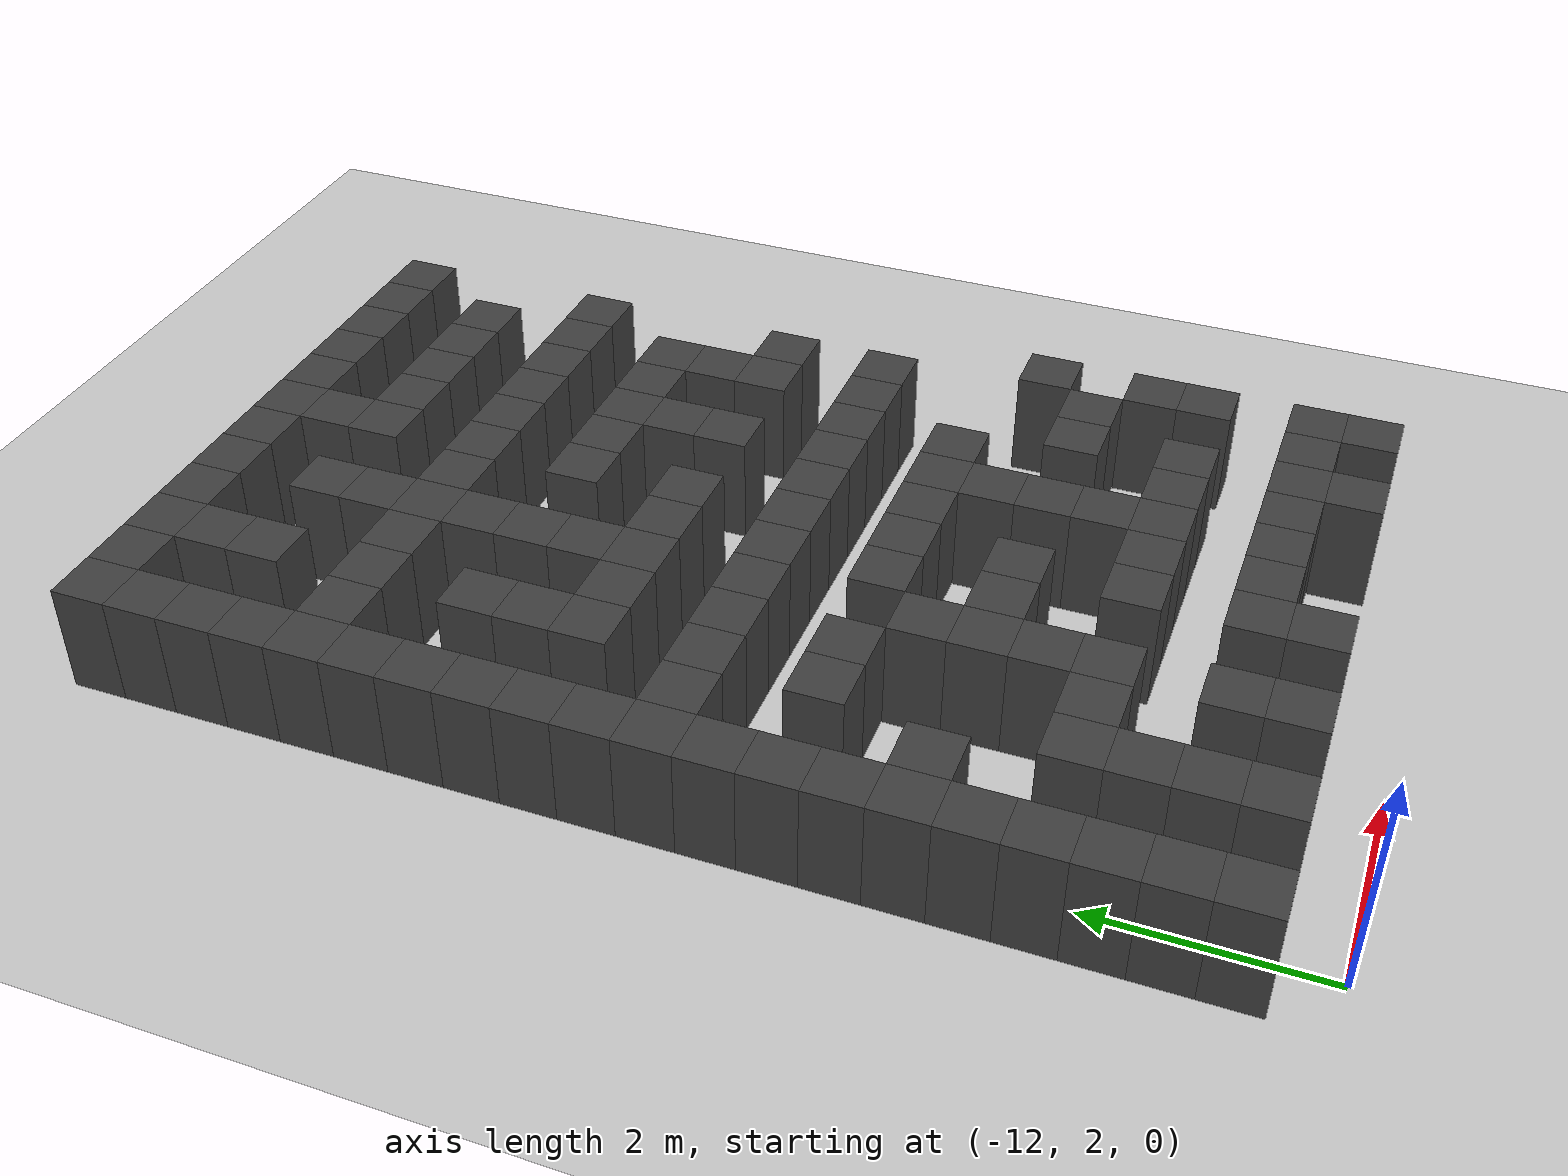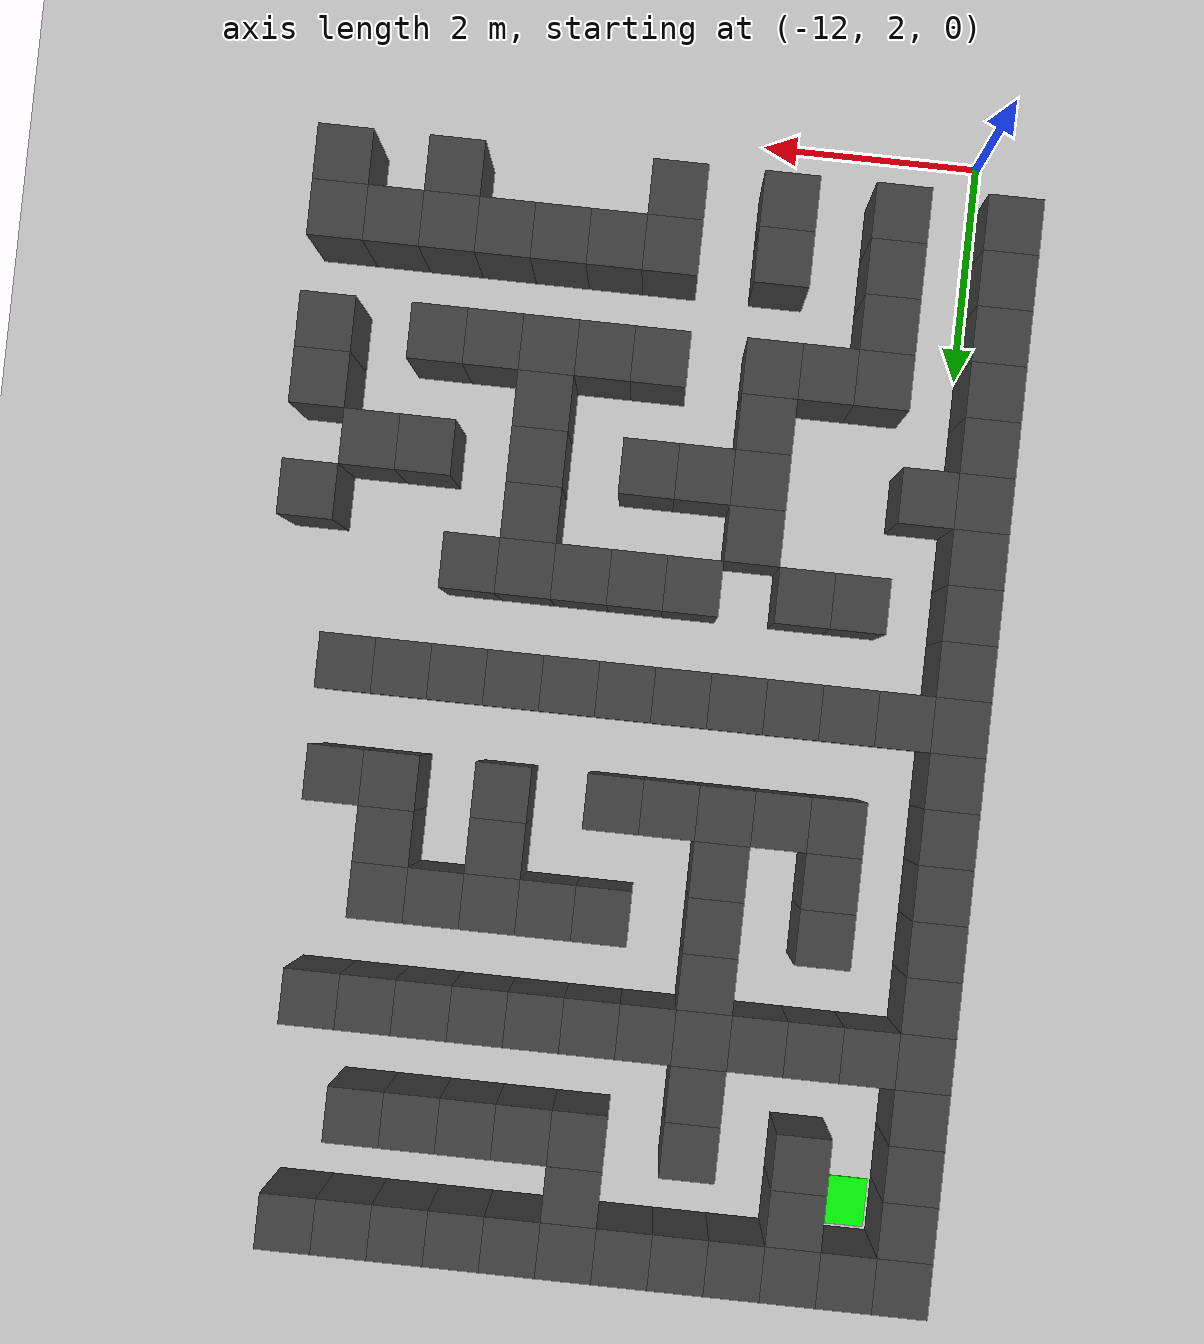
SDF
<sdf version="1.7">
 <world name="map_17503">
  <model name="ground_plane">
   <static>true</static>
   <link name="link">
    <collision name="collision">
     <geometry><plane><normal>0 0 1</normal><size>200 200</size></plane></geometry>
    </collision>
    <visual name="visual">
     <geometry><plane><normal>0 0 1</normal><size>200 200</size></plane></geometry>
     <material><ambient>0.8 0.8 0.8 1</ambient><diffuse>0.8 0.8 0.8 1</diffuse></material>
    </visual>
   </link>
  </model>
  <model name="maze_environment">
   <static>true</static>
   <link name="wall_0">
    <pose>-12.250 12.250 0.500 0 0 0</pose>
    <collision name="col"><geometry><box><size>0.5 0.5 1.0</size></box></geometry></collision>
    <visual name="vis">
     <geometry><box><size>0.5 0.5 1.0</size></box></geometry>
     <material><ambient>0.15 0.15 0.15 1</ambient><diffuse>0.25 0.25 0.25 1</diffuse></material>
    </visual>
   </link>
   <link name="wall_1">
    <pose>-11.750 12.250 0.500 0 0 0</pose>
    <collision name="col"><geometry><box><size>0.5 0.5 1.0</size></box></geometry></collision>
    <visual name="vis">
     <geometry><box><size>0.5 0.5 1.0</size></box></geometry>
     <material><ambient>0.15 0.15 0.15 1</ambient><diffuse>0.25 0.25 0.25 1</diffuse></material>
    </visual>
   </link>
   <link name="wall_2">
    <pose>-11.250 12.250 0.500 0 0 0</pose>
    <collision name="col"><geometry><box><size>0.5 0.5 1.0</size></box></geometry></collision>
    <visual name="vis">
     <geometry><box><size>0.5 0.5 1.0</size></box></geometry>
     <material><ambient>0.15 0.15 0.15 1</ambient><diffuse>0.25 0.25 0.25 1</diffuse></material>
    </visual>
   </link>
   <link name="wall_3">
    <pose>-10.750 12.250 0.500 0 0 0</pose>
    <collision name="col"><geometry><box><size>0.5 0.5 1.0</size></box></geometry></collision>
    <visual name="vis">
     <geometry><box><size>0.5 0.5 1.0</size></box></geometry>
     <material><ambient>0.15 0.15 0.15 1</ambient><diffuse>0.25 0.25 0.25 1</diffuse></material>
    </visual>
   </link>
   <link name="wall_4">
    <pose>-10.250 12.250 0.500 0 0 0</pose>
    <collision name="col"><geometry><box><size>0.5 0.5 1.0</size></box></geometry></collision>
    <visual name="vis">
     <geometry><box><size>0.5 0.5 1.0</size></box></geometry>
     <material><ambient>0.15 0.15 0.15 1</ambient><diffuse>0.25 0.25 0.25 1</diffuse></material>
    </visual>
   </link>
   <link name="wall_5">
    <pose>-9.750 12.250 0.500 0 0 0</pose>
    <collision name="col"><geometry><box><size>0.5 0.5 1.0</size></box></geometry></collision>
    <visual name="vis">
     <geometry><box><size>0.5 0.5 1.0</size></box></geometry>
     <material><ambient>0.15 0.15 0.15 1</ambient><diffuse>0.25 0.25 0.25 1</diffuse></material>
    </visual>
   </link>
   <link name="wall_6">
    <pose>-9.250 12.250 0.500 0 0 0</pose>
    <collision name="col"><geometry><box><size>0.5 0.5 1.0</size></box></geometry></collision>
    <visual name="vis">
     <geometry><box><size>0.5 0.5 1.0</size></box></geometry>
     <material><ambient>0.15 0.15 0.15 1</ambient><diffuse>0.25 0.25 0.25 1</diffuse></material>
    </visual>
   </link>
   <link name="wall_7">
    <pose>-8.750 12.250 0.500 0 0 0</pose>
    <collision name="col"><geometry><box><size>0.5 0.5 1.0</size></box></geometry></collision>
    <visual name="vis">
     <geometry><box><size>0.5 0.5 1.0</size></box></geometry>
     <material><ambient>0.15 0.15 0.15 1</ambient><diffuse>0.25 0.25 0.25 1</diffuse></material>
    </visual>
   </link>
   <link name="wall_8">
    <pose>-8.250 12.250 0.500 0 0 0</pose>
    <collision name="col"><geometry><box><size>0.5 0.5 1.0</size></box></geometry></collision>
    <visual name="vis">
     <geometry><box><size>0.5 0.5 1.0</size></box></geometry>
     <material><ambient>0.15 0.15 0.15 1</ambient><diffuse>0.25 0.25 0.25 1</diffuse></material>
    </visual>
   </link>
   <link name="wall_9">
    <pose>-7.750 12.250 0.500 0 0 0</pose>
    <collision name="col"><geometry><box><size>0.5 0.5 1.0</size></box></geometry></collision>
    <visual name="vis">
     <geometry><box><size>0.5 0.5 1.0</size></box></geometry>
     <material><ambient>0.15 0.15 0.15 1</ambient><diffuse>0.25 0.25 0.25 1</diffuse></material>
    </visual>
   </link>
   <link name="wall_10">
    <pose>-7.250 12.250 0.500 0 0 0</pose>
    <collision name="col"><geometry><box><size>0.5 0.5 1.0</size></box></geometry></collision>
    <visual name="vis">
     <geometry><box><size>0.5 0.5 1.0</size></box></geometry>
     <material><ambient>0.15 0.15 0.15 1</ambient><diffuse>0.25 0.25 0.25 1</diffuse></material>
    </visual>
   </link>
   <link name="wall_11">
    <pose>-6.750 12.250 0.500 0 0 0</pose>
    <collision name="col"><geometry><box><size>0.5 0.5 1.0</size></box></geometry></collision>
    <visual name="vis">
     <geometry><box><size>0.5 0.5 1.0</size></box></geometry>
     <material><ambient>0.15 0.15 0.15 1</ambient><diffuse>0.25 0.25 0.25 1</diffuse></material>
    </visual>
   </link>
   <link name="wall_50">
    <pose>-12.250 11.750 0.500 0 0 0</pose>
    <collision name="col"><geometry><box><size>0.5 0.5 1.0</size></box></geometry></collision>
    <visual name="vis">
     <geometry><box><size>0.5 0.5 1.0</size></box></geometry>
     <material><ambient>0.15 0.15 0.15 1</ambient><diffuse>0.25 0.25 0.25 1</diffuse></material>
    </visual>
   </link>
   <link name="wall_51">
    <pose>-11.250 11.750 0.500 0 0 0</pose>
    <collision name="col"><geometry><box><size>0.5 0.5 1.0</size></box></geometry></collision>
    <visual name="vis">
     <geometry><box><size>0.5 0.5 1.0</size></box></geometry>
     <material><ambient>0.15 0.15 0.15 1</ambient><diffuse>0.25 0.25 0.25 1</diffuse></material>
    </visual>
   </link>
   <link name="wall_52">
    <pose>-9.250 11.750 0.500 0 0 0</pose>
    <collision name="col"><geometry><box><size>0.5 0.5 1.0</size></box></geometry></collision>
    <visual name="vis">
     <geometry><box><size>0.5 0.5 1.0</size></box></geometry>
     <material><ambient>0.15 0.15 0.15 1</ambient><diffuse>0.25 0.25 0.25 1</diffuse></material>
    </visual>
   </link>
   <link name="wall_58">
    <pose>-12.250 11.250 0.500 0 0 0</pose>
    <collision name="col"><geometry><box><size>0.5 0.5 1.0</size></box></geometry></collision>
    <visual name="vis">
     <geometry><box><size>0.5 0.5 1.0</size></box></geometry>
     <material><ambient>0.15 0.15 0.15 1</ambient><diffuse>0.25 0.25 0.25 1</diffuse></material>
    </visual>
   </link>
   <link name="wall_59">
    <pose>-11.250 11.250 0.500 0 0 0</pose>
    <collision name="col"><geometry><box><size>0.5 0.5 1.0</size></box></geometry></collision>
    <visual name="vis">
     <geometry><box><size>0.5 0.5 1.0</size></box></geometry>
     <material><ambient>0.15 0.15 0.15 1</ambient><diffuse>0.25 0.25 0.25 1</diffuse></material>
    </visual>
   </link>
   <link name="wall_60">
    <pose>-10.250 11.250 0.500 0 0 0</pose>
    <collision name="col"><geometry><box><size>0.5 0.5 1.0</size></box></geometry></collision>
    <visual name="vis">
     <geometry><box><size>0.5 0.5 1.0</size></box></geometry>
     <material><ambient>0.15 0.15 0.15 1</ambient><diffuse>0.25 0.25 0.25 1</diffuse></material>
    </visual>
   </link>
   <link name="wall_61">
    <pose>-9.250 11.250 0.500 0 0 0</pose>
    <collision name="col"><geometry><box><size>0.5 0.5 1.0</size></box></geometry></collision>
    <visual name="vis">
     <geometry><box><size>0.5 0.5 1.0</size></box></geometry>
     <material><ambient>0.15 0.15 0.15 1</ambient><diffuse>0.25 0.25 0.25 1</diffuse></material>
    </visual>
   </link>
   <link name="wall_62">
    <pose>-8.750 11.250 0.500 0 0 0</pose>
    <collision name="col"><geometry><box><size>0.5 0.5 1.0</size></box></geometry></collision>
    <visual name="vis">
     <geometry><box><size>0.5 0.5 1.0</size></box></geometry>
     <material><ambient>0.15 0.15 0.15 1</ambient><diffuse>0.25 0.25 0.25 1</diffuse></material>
    </visual>
   </link>
   <link name="wall_63">
    <pose>-8.250 11.250 0.500 0 0 0</pose>
    <collision name="col"><geometry><box><size>0.5 0.5 1.0</size></box></geometry></collision>
    <visual name="vis">
     <geometry><box><size>0.5 0.5 1.0</size></box></geometry>
     <material><ambient>0.15 0.15 0.15 1</ambient><diffuse>0.25 0.25 0.25 1</diffuse></material>
    </visual>
   </link>
   <link name="wall_64">
    <pose>-7.750 11.250 0.500 0 0 0</pose>
    <collision name="col"><geometry><box><size>0.5 0.5 1.0</size></box></geometry></collision>
    <visual name="vis">
     <geometry><box><size>0.5 0.5 1.0</size></box></geometry>
     <material><ambient>0.15 0.15 0.15 1</ambient><diffuse>0.25 0.25 0.25 1</diffuse></material>
    </visual>
   </link>
   <link name="wall_65">
    <pose>-7.250 11.250 0.500 0 0 0</pose>
    <collision name="col"><geometry><box><size>0.5 0.5 1.0</size></box></geometry></collision>
    <visual name="vis">
     <geometry><box><size>0.5 0.5 1.0</size></box></geometry>
     <material><ambient>0.15 0.15 0.15 1</ambient><diffuse>0.25 0.25 0.25 1</diffuse></material>
    </visual>
   </link>
   <link name="wall_94">
    <pose>-12.250 10.750 0.500 0 0 0</pose>
    <collision name="col"><geometry><box><size>0.5 0.5 1.0</size></box></geometry></collision>
    <visual name="vis">
     <geometry><box><size>0.5 0.5 1.0</size></box></geometry>
     <material><ambient>0.15 0.15 0.15 1</ambient><diffuse>0.25 0.25 0.25 1</diffuse></material>
    </visual>
   </link>
   <link name="wall_95">
    <pose>-10.250 10.750 0.500 0 0 0</pose>
    <collision name="col"><geometry><box><size>0.5 0.5 1.0</size></box></geometry></collision>
    <visual name="vis">
     <geometry><box><size>0.5 0.5 1.0</size></box></geometry>
     <material><ambient>0.15 0.15 0.15 1</ambient><diffuse>0.25 0.25 0.25 1</diffuse></material>
    </visual>
   </link>
   <link name="wall_106">
    <pose>-12.250 10.250 0.500 0 0 0</pose>
    <collision name="col"><geometry><box><size>0.5 0.5 1.0</size></box></geometry></collision>
    <visual name="vis">
     <geometry><box><size>0.5 0.5 1.0</size></box></geometry>
     <material><ambient>0.15 0.15 0.15 1</ambient><diffuse>0.25 0.25 0.25 1</diffuse></material>
    </visual>
   </link>
   <link name="wall_107">
    <pose>-11.750 10.250 0.500 0 0 0</pose>
    <collision name="col"><geometry><box><size>0.5 0.5 1.0</size></box></geometry></collision>
    <visual name="vis">
     <geometry><box><size>0.5 0.5 1.0</size></box></geometry>
     <material><ambient>0.15 0.15 0.15 1</ambient><diffuse>0.25 0.25 0.25 1</diffuse></material>
    </visual>
   </link>
   <link name="wall_108">
    <pose>-11.250 10.250 0.500 0 0 0</pose>
    <collision name="col"><geometry><box><size>0.5 0.5 1.0</size></box></geometry></collision>
    <visual name="vis">
     <geometry><box><size>0.5 0.5 1.0</size></box></geometry>
     <material><ambient>0.15 0.15 0.15 1</ambient><diffuse>0.25 0.25 0.25 1</diffuse></material>
    </visual>
   </link>
   <link name="wall_109">
    <pose>-10.750 10.250 0.500 0 0 0</pose>
    <collision name="col"><geometry><box><size>0.5 0.5 1.0</size></box></geometry></collision>
    <visual name="vis">
     <geometry><box><size>0.5 0.5 1.0</size></box></geometry>
     <material><ambient>0.15 0.15 0.15 1</ambient><diffuse>0.25 0.25 0.25 1</diffuse></material>
    </visual>
   </link>
   <link name="wall_110">
    <pose>-10.250 10.250 0.500 0 0 0</pose>
    <collision name="col"><geometry><box><size>0.5 0.5 1.0</size></box></geometry></collision>
    <visual name="vis">
     <geometry><box><size>0.5 0.5 1.0</size></box></geometry>
     <material><ambient>0.15 0.15 0.15 1</ambient><diffuse>0.25 0.25 0.25 1</diffuse></material>
    </visual>
   </link>
   <link name="wall_111">
    <pose>-9.750 10.250 0.500 0 0 0</pose>
    <collision name="col"><geometry><box><size>0.5 0.5 1.0</size></box></geometry></collision>
    <visual name="vis">
     <geometry><box><size>0.5 0.5 1.0</size></box></geometry>
     <material><ambient>0.15 0.15 0.15 1</ambient><diffuse>0.25 0.25 0.25 1</diffuse></material>
    </visual>
   </link>
   <link name="wall_112">
    <pose>-9.250 10.250 0.500 0 0 0</pose>
    <collision name="col"><geometry><box><size>0.5 0.5 1.0</size></box></geometry></collision>
    <visual name="vis">
     <geometry><box><size>0.5 0.5 1.0</size></box></geometry>
     <material><ambient>0.15 0.15 0.15 1</ambient><diffuse>0.25 0.25 0.25 1</diffuse></material>
    </visual>
   </link>
   <link name="wall_113">
    <pose>-8.750 10.250 0.500 0 0 0</pose>
    <collision name="col"><geometry><box><size>0.5 0.5 1.0</size></box></geometry></collision>
    <visual name="vis">
     <geometry><box><size>0.5 0.5 1.0</size></box></geometry>
     <material><ambient>0.15 0.15 0.15 1</ambient><diffuse>0.25 0.25 0.25 1</diffuse></material>
    </visual>
   </link>
   <link name="wall_114">
    <pose>-8.250 10.250 0.500 0 0 0</pose>
    <collision name="col"><geometry><box><size>0.5 0.5 1.0</size></box></geometry></collision>
    <visual name="vis">
     <geometry><box><size>0.5 0.5 1.0</size></box></geometry>
     <material><ambient>0.15 0.15 0.15 1</ambient><diffuse>0.25 0.25 0.25 1</diffuse></material>
    </visual>
   </link>
   <link name="wall_115">
    <pose>-7.750 10.250 0.500 0 0 0</pose>
    <collision name="col"><geometry><box><size>0.5 0.5 1.0</size></box></geometry></collision>
    <visual name="vis">
     <geometry><box><size>0.5 0.5 1.0</size></box></geometry>
     <material><ambient>0.15 0.15 0.15 1</ambient><diffuse>0.25 0.25 0.25 1</diffuse></material>
    </visual>
   </link>
   <link name="wall_116">
    <pose>-7.250 10.250 0.500 0 0 0</pose>
    <collision name="col"><geometry><box><size>0.5 0.5 1.0</size></box></geometry></collision>
    <visual name="vis">
     <geometry><box><size>0.5 0.5 1.0</size></box></geometry>
     <material><ambient>0.15 0.15 0.15 1</ambient><diffuse>0.25 0.25 0.25 1</diffuse></material>
    </visual>
   </link>
   <link name="wall_117">
    <pose>-6.750 10.250 0.500 0 0 0</pose>
    <collision name="col"><geometry><box><size>0.5 0.5 1.0</size></box></geometry></collision>
    <visual name="vis">
     <geometry><box><size>0.5 0.5 1.0</size></box></geometry>
     <material><ambient>0.15 0.15 0.15 1</ambient><diffuse>0.25 0.25 0.25 1</diffuse></material>
    </visual>
   </link>
   <link name="wall_143">
    <pose>-12.250 9.750 0.500 0 0 0</pose>
    <collision name="col"><geometry><box><size>0.5 0.5 1.0</size></box></geometry></collision>
    <visual name="vis">
     <geometry><box><size>0.5 0.5 1.0</size></box></geometry>
     <material><ambient>0.15 0.15 0.15 1</ambient><diffuse>0.25 0.25 0.25 1</diffuse></material>
    </visual>
   </link>
   <link name="wall_144">
    <pose>-10.250 9.750 0.500 0 0 0</pose>
    <collision name="col"><geometry><box><size>0.5 0.5 1.0</size></box></geometry></collision>
    <visual name="vis">
     <geometry><box><size>0.5 0.5 1.0</size></box></geometry>
     <material><ambient>0.15 0.15 0.15 1</ambient><diffuse>0.25 0.25 0.25 1</diffuse></material>
    </visual>
   </link>
   <link name="wall_154">
    <pose>-12.250 9.250 0.500 0 0 0</pose>
    <collision name="col"><geometry><box><size>0.5 0.5 1.0</size></box></geometry></collision>
    <visual name="vis">
     <geometry><box><size>0.5 0.5 1.0</size></box></geometry>
     <material><ambient>0.15 0.15 0.15 1</ambient><diffuse>0.25 0.25 0.25 1</diffuse></material>
    </visual>
   </link>
   <link name="wall_155">
    <pose>-11.250 9.250 0.500 0 0 0</pose>
    <collision name="col"><geometry><box><size>0.5 0.5 1.0</size></box></geometry></collision>
    <visual name="vis">
     <geometry><box><size>0.5 0.5 1.0</size></box></geometry>
     <material><ambient>0.15 0.15 0.15 1</ambient><diffuse>0.25 0.25 0.25 1</diffuse></material>
    </visual>
   </link>
   <link name="wall_156">
    <pose>-10.250 9.250 0.500 0 0 0</pose>
    <collision name="col"><geometry><box><size>0.5 0.5 1.0</size></box></geometry></collision>
    <visual name="vis">
     <geometry><box><size>0.5 0.5 1.0</size></box></geometry>
     <material><ambient>0.15 0.15 0.15 1</ambient><diffuse>0.25 0.25 0.25 1</diffuse></material>
    </visual>
   </link>
   <link name="wall_157">
    <pose>-9.250 9.250 0.500 0 0 0</pose>
    <collision name="col"><geometry><box><size>0.5 0.5 1.0</size></box></geometry></collision>
    <visual name="vis">
     <geometry><box><size>0.5 0.5 1.0</size></box></geometry>
     <material><ambient>0.15 0.15 0.15 1</ambient><diffuse>0.25 0.25 0.25 1</diffuse></material>
    </visual>
   </link>
   <link name="wall_158">
    <pose>-8.750 9.250 0.500 0 0 0</pose>
    <collision name="col"><geometry><box><size>0.5 0.5 1.0</size></box></geometry></collision>
    <visual name="vis">
     <geometry><box><size>0.5 0.5 1.0</size></box></geometry>
     <material><ambient>0.15 0.15 0.15 1</ambient><diffuse>0.25 0.25 0.25 1</diffuse></material>
    </visual>
   </link>
   <link name="wall_159">
    <pose>-8.250 9.250 0.500 0 0 0</pose>
    <collision name="col"><geometry><box><size>0.5 0.5 1.0</size></box></geometry></collision>
    <visual name="vis">
     <geometry><box><size>0.5 0.5 1.0</size></box></geometry>
     <material><ambient>0.15 0.15 0.15 1</ambient><diffuse>0.25 0.25 0.25 1</diffuse></material>
    </visual>
   </link>
   <link name="wall_160">
    <pose>-7.750 9.250 0.500 0 0 0</pose>
    <collision name="col"><geometry><box><size>0.5 0.5 1.0</size></box></geometry></collision>
    <visual name="vis">
     <geometry><box><size>0.5 0.5 1.0</size></box></geometry>
     <material><ambient>0.15 0.15 0.15 1</ambient><diffuse>0.25 0.25 0.25 1</diffuse></material>
    </visual>
   </link>
   <link name="wall_161">
    <pose>-7.250 9.250 0.500 0 0 0</pose>
    <collision name="col"><geometry><box><size>0.5 0.5 1.0</size></box></geometry></collision>
    <visual name="vis">
     <geometry><box><size>0.5 0.5 1.0</size></box></geometry>
     <material><ambient>0.15 0.15 0.15 1</ambient><diffuse>0.25 0.25 0.25 1</diffuse></material>
    </visual>
   </link>
   <link name="wall_189">
    <pose>-12.250 8.750 0.500 0 0 0</pose>
    <collision name="col"><geometry><box><size>0.5 0.5 1.0</size></box></geometry></collision>
    <visual name="vis">
     <geometry><box><size>0.5 0.5 1.0</size></box></geometry>
     <material><ambient>0.15 0.15 0.15 1</ambient><diffuse>0.25 0.25 0.25 1</diffuse></material>
    </visual>
   </link>
   <link name="wall_190">
    <pose>-11.250 8.750 0.500 0 0 0</pose>
    <collision name="col"><geometry><box><size>0.5 0.5 1.0</size></box></geometry></collision>
    <visual name="vis">
     <geometry><box><size>0.5 0.5 1.0</size></box></geometry>
     <material><ambient>0.15 0.15 0.15 1</ambient><diffuse>0.25 0.25 0.25 1</diffuse></material>
    </visual>
   </link>
   <link name="wall_191">
    <pose>-10.250 8.750 0.500 0 0 0</pose>
    <collision name="col"><geometry><box><size>0.5 0.5 1.0</size></box></geometry></collision>
    <visual name="vis">
     <geometry><box><size>0.5 0.5 1.0</size></box></geometry>
     <material><ambient>0.15 0.15 0.15 1</ambient><diffuse>0.25 0.25 0.25 1</diffuse></material>
    </visual>
   </link>
   <link name="wall_192">
    <pose>-8.250 8.750 0.500 0 0 0</pose>
    <collision name="col"><geometry><box><size>0.5 0.5 1.0</size></box></geometry></collision>
    <visual name="vis">
     <geometry><box><size>0.5 0.5 1.0</size></box></geometry>
     <material><ambient>0.15 0.15 0.15 1</ambient><diffuse>0.25 0.25 0.25 1</diffuse></material>
    </visual>
   </link>
   <link name="wall_193">
    <pose>-7.250 8.750 0.500 0 0 0</pose>
    <collision name="col"><geometry><box><size>0.5 0.5 1.0</size></box></geometry></collision>
    <visual name="vis">
     <geometry><box><size>0.5 0.5 1.0</size></box></geometry>
     <material><ambient>0.15 0.15 0.15 1</ambient><diffuse>0.25 0.25 0.25 1</diffuse></material>
    </visual>
   </link>
   <link name="wall_201">
    <pose>-12.250 8.250 0.500 0 0 0</pose>
    <collision name="col"><geometry><box><size>0.5 0.5 1.0</size></box></geometry></collision>
    <visual name="vis">
     <geometry><box><size>0.5 0.5 1.0</size></box></geometry>
     <material><ambient>0.15 0.15 0.15 1</ambient><diffuse>0.25 0.25 0.25 1</diffuse></material>
    </visual>
   </link>
   <link name="wall_202">
    <pose>-11.250 8.250 0.500 0 0 0</pose>
    <collision name="col"><geometry><box><size>0.5 0.5 1.0</size></box></geometry></collision>
    <visual name="vis">
     <geometry><box><size>0.5 0.5 1.0</size></box></geometry>
     <material><ambient>0.15 0.15 0.15 1</ambient><diffuse>0.25 0.25 0.25 1</diffuse></material>
    </visual>
   </link>
   <link name="wall_203">
    <pose>-10.750 8.250 0.500 0 0 0</pose>
    <collision name="col"><geometry><box><size>0.5 0.5 1.0</size></box></geometry></collision>
    <visual name="vis">
     <geometry><box><size>0.5 0.5 1.0</size></box></geometry>
     <material><ambient>0.15 0.15 0.15 1</ambient><diffuse>0.25 0.25 0.25 1</diffuse></material>
    </visual>
   </link>
   <link name="wall_204">
    <pose>-10.250 8.250 0.500 0 0 0</pose>
    <collision name="col"><geometry><box><size>0.5 0.5 1.0</size></box></geometry></collision>
    <visual name="vis">
     <geometry><box><size>0.5 0.5 1.0</size></box></geometry>
     <material><ambient>0.15 0.15 0.15 1</ambient><diffuse>0.25 0.25 0.25 1</diffuse></material>
    </visual>
   </link>
   <link name="wall_205">
    <pose>-9.750 8.250 0.500 0 0 0</pose>
    <collision name="col"><geometry><box><size>0.5 0.5 1.0</size></box></geometry></collision>
    <visual name="vis">
     <geometry><box><size>0.5 0.5 1.0</size></box></geometry>
     <material><ambient>0.15 0.15 0.15 1</ambient><diffuse>0.25 0.25 0.25 1</diffuse></material>
    </visual>
   </link>
   <link name="wall_206">
    <pose>-9.250 8.250 0.500 0 0 0</pose>
    <collision name="col"><geometry><box><size>0.5 0.5 1.0</size></box></geometry></collision>
    <visual name="vis">
     <geometry><box><size>0.5 0.5 1.0</size></box></geometry>
     <material><ambient>0.15 0.15 0.15 1</ambient><diffuse>0.25 0.25 0.25 1</diffuse></material>
    </visual>
   </link>
   <link name="wall_207">
    <pose>-8.250 8.250 0.500 0 0 0</pose>
    <collision name="col"><geometry><box><size>0.5 0.5 1.0</size></box></geometry></collision>
    <visual name="vis">
     <geometry><box><size>0.5 0.5 1.0</size></box></geometry>
     <material><ambient>0.15 0.15 0.15 1</ambient><diffuse>0.25 0.25 0.25 1</diffuse></material>
    </visual>
   </link>
   <link name="wall_208">
    <pose>-7.250 8.250 0.500 0 0 0</pose>
    <collision name="col"><geometry><box><size>0.5 0.5 1.0</size></box></geometry></collision>
    <visual name="vis">
     <geometry><box><size>0.5 0.5 1.0</size></box></geometry>
     <material><ambient>0.15 0.15 0.15 1</ambient><diffuse>0.25 0.25 0.25 1</diffuse></material>
    </visual>
   </link>
   <link name="wall_209">
    <pose>-6.750 8.250 0.500 0 0 0</pose>
    <collision name="col"><geometry><box><size>0.5 0.5 1.0</size></box></geometry></collision>
    <visual name="vis">
     <geometry><box><size>0.5 0.5 1.0</size></box></geometry>
     <material><ambient>0.15 0.15 0.15 1</ambient><diffuse>0.25 0.25 0.25 1</diffuse></material>
    </visual>
   </link>
   <link name="wall_238">
    <pose>-12.250 7.750 0.500 0 0 0</pose>
    <collision name="col"><geometry><box><size>0.5 0.5 1.0</size></box></geometry></collision>
    <visual name="vis">
     <geometry><box><size>0.5 0.5 1.0</size></box></geometry>
     <material><ambient>0.15 0.15 0.15 1</ambient><diffuse>0.25 0.25 0.25 1</diffuse></material>
    </visual>
   </link>
   <link name="wall_251">
    <pose>-12.250 7.250 0.500 0 0 0</pose>
    <collision name="col"><geometry><box><size>0.5 0.5 1.0</size></box></geometry></collision>
    <visual name="vis">
     <geometry><box><size>0.5 0.5 1.0</size></box></geometry>
     <material><ambient>0.15 0.15 0.15 1</ambient><diffuse>0.25 0.25 0.25 1</diffuse></material>
    </visual>
   </link>
   <link name="wall_252">
    <pose>-11.750 7.250 0.500 0 0 0</pose>
    <collision name="col"><geometry><box><size>0.5 0.5 1.0</size></box></geometry></collision>
    <visual name="vis">
     <geometry><box><size>0.5 0.5 1.0</size></box></geometry>
     <material><ambient>0.15 0.15 0.15 1</ambient><diffuse>0.25 0.25 0.25 1</diffuse></material>
    </visual>
   </link>
   <link name="wall_253">
    <pose>-11.250 7.250 0.500 0 0 0</pose>
    <collision name="col"><geometry><box><size>0.5 0.5 1.0</size></box></geometry></collision>
    <visual name="vis">
     <geometry><box><size>0.5 0.5 1.0</size></box></geometry>
     <material><ambient>0.15 0.15 0.15 1</ambient><diffuse>0.25 0.25 0.25 1</diffuse></material>
    </visual>
   </link>
   <link name="wall_254">
    <pose>-10.750 7.250 0.500 0 0 0</pose>
    <collision name="col"><geometry><box><size>0.5 0.5 1.0</size></box></geometry></collision>
    <visual name="vis">
     <geometry><box><size>0.5 0.5 1.0</size></box></geometry>
     <material><ambient>0.15 0.15 0.15 1</ambient><diffuse>0.25 0.25 0.25 1</diffuse></material>
    </visual>
   </link>
   <link name="wall_255">
    <pose>-10.250 7.250 0.500 0 0 0</pose>
    <collision name="col"><geometry><box><size>0.5 0.5 1.0</size></box></geometry></collision>
    <visual name="vis">
     <geometry><box><size>0.5 0.5 1.0</size></box></geometry>
     <material><ambient>0.15 0.15 0.15 1</ambient><diffuse>0.25 0.25 0.25 1</diffuse></material>
    </visual>
   </link>
   <link name="wall_256">
    <pose>-9.750 7.250 0.500 0 0 0</pose>
    <collision name="col"><geometry><box><size>0.5 0.5 1.0</size></box></geometry></collision>
    <visual name="vis">
     <geometry><box><size>0.5 0.5 1.0</size></box></geometry>
     <material><ambient>0.15 0.15 0.15 1</ambient><diffuse>0.25 0.25 0.25 1</diffuse></material>
    </visual>
   </link>
   <link name="wall_257">
    <pose>-9.250 7.250 0.500 0 0 0</pose>
    <collision name="col"><geometry><box><size>0.5 0.5 1.0</size></box></geometry></collision>
    <visual name="vis">
     <geometry><box><size>0.5 0.5 1.0</size></box></geometry>
     <material><ambient>0.15 0.15 0.15 1</ambient><diffuse>0.25 0.25 0.25 1</diffuse></material>
    </visual>
   </link>
   <link name="wall_258">
    <pose>-8.750 7.250 0.500 0 0 0</pose>
    <collision name="col"><geometry><box><size>0.5 0.5 1.0</size></box></geometry></collision>
    <visual name="vis">
     <geometry><box><size>0.5 0.5 1.0</size></box></geometry>
     <material><ambient>0.15 0.15 0.15 1</ambient><diffuse>0.25 0.25 0.25 1</diffuse></material>
    </visual>
   </link>
   <link name="wall_259">
    <pose>-8.250 7.250 0.500 0 0 0</pose>
    <collision name="col"><geometry><box><size>0.5 0.5 1.0</size></box></geometry></collision>
    <visual name="vis">
     <geometry><box><size>0.5 0.5 1.0</size></box></geometry>
     <material><ambient>0.15 0.15 0.15 1</ambient><diffuse>0.25 0.25 0.25 1</diffuse></material>
    </visual>
   </link>
   <link name="wall_260">
    <pose>-7.750 7.250 0.500 0 0 0</pose>
    <collision name="col"><geometry><box><size>0.5 0.5 1.0</size></box></geometry></collision>
    <visual name="vis">
     <geometry><box><size>0.5 0.5 1.0</size></box></geometry>
     <material><ambient>0.15 0.15 0.15 1</ambient><diffuse>0.25 0.25 0.25 1</diffuse></material>
    </visual>
   </link>
   <link name="wall_261">
    <pose>-7.250 7.250 0.500 0 0 0</pose>
    <collision name="col"><geometry><box><size>0.5 0.5 1.0</size></box></geometry></collision>
    <visual name="vis">
     <geometry><box><size>0.5 0.5 1.0</size></box></geometry>
     <material><ambient>0.15 0.15 0.15 1</ambient><diffuse>0.25 0.25 0.25 1</diffuse></material>
    </visual>
   </link>
   <link name="wall_262">
    <pose>-6.750 7.250 0.500 0 0 0</pose>
    <collision name="col"><geometry><box><size>0.5 0.5 1.0</size></box></geometry></collision>
    <visual name="vis">
     <geometry><box><size>0.5 0.5 1.0</size></box></geometry>
     <material><ambient>0.15 0.15 0.15 1</ambient><diffuse>0.25 0.25 0.25 1</diffuse></material>
    </visual>
   </link>
   <link name="wall_285">
    <pose>-12.250 6.750 0.500 0 0 0</pose>
    <collision name="col"><geometry><box><size>0.5 0.5 1.0</size></box></geometry></collision>
    <visual name="vis">
     <geometry><box><size>0.5 0.5 1.0</size></box></geometry>
     <material><ambient>0.15 0.15 0.15 1</ambient><diffuse>0.25 0.25 0.25 1</diffuse></material>
    </visual>
   </link>
   <link name="wall_298">
    <pose>-12.250 6.250 0.500 0 0 0</pose>
    <collision name="col"><geometry><box><size>0.5 0.5 1.0</size></box></geometry></collision>
    <visual name="vis">
     <geometry><box><size>0.5 0.5 1.0</size></box></geometry>
     <material><ambient>0.15 0.15 0.15 1</ambient><diffuse>0.25 0.25 0.25 1</diffuse></material>
    </visual>
   </link>
   <link name="wall_299">
    <pose>-11.250 6.250 0.500 0 0 0</pose>
    <collision name="col"><geometry><box><size>0.5 0.5 1.0</size></box></geometry></collision>
    <visual name="vis">
     <geometry><box><size>0.5 0.5 1.0</size></box></geometry>
     <material><ambient>0.15 0.15 0.15 1</ambient><diffuse>0.25 0.25 0.25 1</diffuse></material>
    </visual>
   </link>
   <link name="wall_300">
    <pose>-10.750 6.250 0.500 0 0 0</pose>
    <collision name="col"><geometry><box><size>0.5 0.5 1.0</size></box></geometry></collision>
    <visual name="vis">
     <geometry><box><size>0.5 0.5 1.0</size></box></geometry>
     <material><ambient>0.15 0.15 0.15 1</ambient><diffuse>0.25 0.25 0.25 1</diffuse></material>
    </visual>
   </link>
   <link name="wall_301">
    <pose>-9.750 6.250 0.500 0 0 0</pose>
    <collision name="col"><geometry><box><size>0.5 0.5 1.0</size></box></geometry></collision>
    <visual name="vis">
     <geometry><box><size>0.5 0.5 1.0</size></box></geometry>
     <material><ambient>0.15 0.15 0.15 1</ambient><diffuse>0.25 0.25 0.25 1</diffuse></material>
    </visual>
   </link>
   <link name="wall_302">
    <pose>-9.250 6.250 0.500 0 0 0</pose>
    <collision name="col"><geometry><box><size>0.5 0.5 1.0</size></box></geometry></collision>
    <visual name="vis">
     <geometry><box><size>0.5 0.5 1.0</size></box></geometry>
     <material><ambient>0.15 0.15 0.15 1</ambient><diffuse>0.25 0.25 0.25 1</diffuse></material>
    </visual>
   </link>
   <link name="wall_303">
    <pose>-8.750 6.250 0.500 0 0 0</pose>
    <collision name="col"><geometry><box><size>0.5 0.5 1.0</size></box></geometry></collision>
    <visual name="vis">
     <geometry><box><size>0.5 0.5 1.0</size></box></geometry>
     <material><ambient>0.15 0.15 0.15 1</ambient><diffuse>0.25 0.25 0.25 1</diffuse></material>
    </visual>
   </link>
   <link name="wall_304">
    <pose>-8.250 6.250 0.500 0 0 0</pose>
    <collision name="col"><geometry><box><size>0.5 0.5 1.0</size></box></geometry></collision>
    <visual name="vis">
     <geometry><box><size>0.5 0.5 1.0</size></box></geometry>
     <material><ambient>0.15 0.15 0.15 1</ambient><diffuse>0.25 0.25 0.25 1</diffuse></material>
    </visual>
   </link>
   <link name="wall_305">
    <pose>-7.750 6.250 0.500 0 0 0</pose>
    <collision name="col"><geometry><box><size>0.5 0.5 1.0</size></box></geometry></collision>
    <visual name="vis">
     <geometry><box><size>0.5 0.5 1.0</size></box></geometry>
     <material><ambient>0.15 0.15 0.15 1</ambient><diffuse>0.25 0.25 0.25 1</diffuse></material>
    </visual>
   </link>
   <link name="wall_333">
    <pose>-12.250 5.750 0.500 0 0 0</pose>
    <collision name="col"><geometry><box><size>0.5 0.5 1.0</size></box></geometry></collision>
    <visual name="vis">
     <geometry><box><size>0.5 0.5 1.0</size></box></geometry>
     <material><ambient>0.15 0.15 0.15 1</ambient><diffuse>0.25 0.25 0.25 1</diffuse></material>
    </visual>
   </link>
   <link name="wall_334">
    <pose>-10.250 5.750 0.500 0 0 0</pose>
    <collision name="col"><geometry><box><size>0.5 0.5 1.0</size></box></geometry></collision>
    <visual name="vis">
     <geometry><box><size>0.5 0.5 1.0</size></box></geometry>
     <material><ambient>0.15 0.15 0.15 1</ambient><diffuse>0.25 0.25 0.25 1</diffuse></material>
    </visual>
   </link>
   <link name="wall_335">
    <pose>-8.250 5.750 0.500 0 0 0</pose>
    <collision name="col"><geometry><box><size>0.5 0.5 1.0</size></box></geometry></collision>
    <visual name="vis">
     <geometry><box><size>0.5 0.5 1.0</size></box></geometry>
     <material><ambient>0.15 0.15 0.15 1</ambient><diffuse>0.25 0.25 0.25 1</diffuse></material>
    </visual>
   </link>
   <link name="wall_336">
    <pose>-6.250 5.750 0.500 0 0 0</pose>
    <collision name="col"><geometry><box><size>0.5 0.5 1.0</size></box></geometry></collision>
    <visual name="vis">
     <geometry><box><size>0.5 0.5 1.0</size></box></geometry>
     <material><ambient>0.15 0.15 0.15 1</ambient><diffuse>0.25 0.25 0.25 1</diffuse></material>
    </visual>
   </link>
   <link name="wall_347">
    <pose>-12.250 5.250 0.500 0 0 0</pose>
    <collision name="col"><geometry><box><size>0.5 0.5 1.0</size></box></geometry></collision>
    <visual name="vis">
     <geometry><box><size>0.5 0.5 1.0</size></box></geometry>
     <material><ambient>0.15 0.15 0.15 1</ambient><diffuse>0.25 0.25 0.25 1</diffuse></material>
    </visual>
   </link>
   <link name="wall_348">
    <pose>-11.750 5.250 0.500 0 0 0</pose>
    <collision name="col"><geometry><box><size>0.5 0.5 1.0</size></box></geometry></collision>
    <visual name="vis">
     <geometry><box><size>0.5 0.5 1.0</size></box></geometry>
     <material><ambient>0.15 0.15 0.15 1</ambient><diffuse>0.25 0.25 0.25 1</diffuse></material>
    </visual>
   </link>
   <link name="wall_349">
    <pose>-10.250 5.250 0.500 0 0 0</pose>
    <collision name="col"><geometry><box><size>0.5 0.5 1.0</size></box></geometry></collision>
    <visual name="vis">
     <geometry><box><size>0.5 0.5 1.0</size></box></geometry>
     <material><ambient>0.15 0.15 0.15 1</ambient><diffuse>0.25 0.25 0.25 1</diffuse></material>
    </visual>
   </link>
   <link name="wall_350">
    <pose>-9.750 5.250 0.500 0 0 0</pose>
    <collision name="col"><geometry><box><size>0.5 0.5 1.0</size></box></geometry></collision>
    <visual name="vis">
     <geometry><box><size>0.5 0.5 1.0</size></box></geometry>
     <material><ambient>0.15 0.15 0.15 1</ambient><diffuse>0.25 0.25 0.25 1</diffuse></material>
    </visual>
   </link>
   <link name="wall_351">
    <pose>-9.250 5.250 0.500 0 0 0</pose>
    <collision name="col"><geometry><box><size>0.5 0.5 1.0</size></box></geometry></collision>
    <visual name="vis">
     <geometry><box><size>0.5 0.5 1.0</size></box></geometry>
     <material><ambient>0.15 0.15 0.15 1</ambient><diffuse>0.25 0.25 0.25 1</diffuse></material>
    </visual>
   </link>
   <link name="wall_352">
    <pose>-8.250 5.250 0.500 0 0 0</pose>
    <collision name="col"><geometry><box><size>0.5 0.5 1.0</size></box></geometry></collision>
    <visual name="vis">
     <geometry><box><size>0.5 0.5 1.0</size></box></geometry>
     <material><ambient>0.15 0.15 0.15 1</ambient><diffuse>0.25 0.25 0.25 1</diffuse></material>
    </visual>
   </link>
   <link name="wall_353">
    <pose>-7.250 5.250 0.500 0 0 0</pose>
    <collision name="col"><geometry><box><size>0.5 0.5 1.0</size></box></geometry></collision>
    <visual name="vis">
     <geometry><box><size>0.5 0.5 1.0</size></box></geometry>
     <material><ambient>0.15 0.15 0.15 1</ambient><diffuse>0.25 0.25 0.25 1</diffuse></material>
    </visual>
   </link>
   <link name="wall_354">
    <pose>-6.750 5.250 0.500 0 0 0</pose>
    <collision name="col"><geometry><box><size>0.5 0.5 1.0</size></box></geometry></collision>
    <visual name="vis">
     <geometry><box><size>0.5 0.5 1.0</size></box></geometry>
     <material><ambient>0.15 0.15 0.15 1</ambient><diffuse>0.25 0.25 0.25 1</diffuse></material>
    </visual>
   </link>
   <link name="wall_379">
    <pose>-12.250 4.750 0.500 0 0 0</pose>
    <collision name="col"><geometry><box><size>0.5 0.5 1.0</size></box></geometry></collision>
    <visual name="vis">
     <geometry><box><size>0.5 0.5 1.0</size></box></geometry>
     <material><ambient>0.15 0.15 0.15 1</ambient><diffuse>0.25 0.25 0.25 1</diffuse></material>
    </visual>
   </link>
   <link name="wall_380">
    <pose>-10.250 4.750 0.500 0 0 0</pose>
    <collision name="col"><geometry><box><size>0.5 0.5 1.0</size></box></geometry></collision>
    <visual name="vis">
     <geometry><box><size>0.5 0.5 1.0</size></box></geometry>
     <material><ambient>0.15 0.15 0.15 1</ambient><diffuse>0.25 0.25 0.25 1</diffuse></material>
    </visual>
   </link>
   <link name="wall_381">
    <pose>-8.250 4.750 0.500 0 0 0</pose>
    <collision name="col"><geometry><box><size>0.5 0.5 1.0</size></box></geometry></collision>
    <visual name="vis">
     <geometry><box><size>0.5 0.5 1.0</size></box></geometry>
     <material><ambient>0.15 0.15 0.15 1</ambient><diffuse>0.25 0.25 0.25 1</diffuse></material>
    </visual>
   </link>
   <link name="wall_382">
    <pose>-6.250 4.750 0.500 0 0 0</pose>
    <collision name="col"><geometry><box><size>0.5 0.5 1.0</size></box></geometry></collision>
    <visual name="vis">
     <geometry><box><size>0.5 0.5 1.0</size></box></geometry>
     <material><ambient>0.15 0.15 0.15 1</ambient><diffuse>0.25 0.25 0.25 1</diffuse></material>
    </visual>
   </link>
   <link name="wall_395">
    <pose>-12.250 4.250 0.500 0 0 0</pose>
    <collision name="col"><geometry><box><size>0.5 0.5 1.0</size></box></geometry></collision>
    <visual name="vis">
     <geometry><box><size>0.5 0.5 1.0</size></box></geometry>
     <material><ambient>0.15 0.15 0.15 1</ambient><diffuse>0.25 0.25 0.25 1</diffuse></material>
    </visual>
   </link>
   <link name="wall_396">
    <pose>-11.250 4.250 0.500 0 0 0</pose>
    <collision name="col"><geometry><box><size>0.5 0.5 1.0</size></box></geometry></collision>
    <visual name="vis">
     <geometry><box><size>0.5 0.5 1.0</size></box></geometry>
     <material><ambient>0.15 0.15 0.15 1</ambient><diffuse>0.25 0.25 0.25 1</diffuse></material>
    </visual>
   </link>
   <link name="wall_397">
    <pose>-10.750 4.250 0.500 0 0 0</pose>
    <collision name="col"><geometry><box><size>0.5 0.5 1.0</size></box></geometry></collision>
    <visual name="vis">
     <geometry><box><size>0.5 0.5 1.0</size></box></geometry>
     <material><ambient>0.15 0.15 0.15 1</ambient><diffuse>0.25 0.25 0.25 1</diffuse></material>
    </visual>
   </link>
   <link name="wall_398">
    <pose>-10.250 4.250 0.500 0 0 0</pose>
    <collision name="col"><geometry><box><size>0.5 0.5 1.0</size></box></geometry></collision>
    <visual name="vis">
     <geometry><box><size>0.5 0.5 1.0</size></box></geometry>
     <material><ambient>0.15 0.15 0.15 1</ambient><diffuse>0.25 0.25 0.25 1</diffuse></material>
    </visual>
   </link>
   <link name="wall_399">
    <pose>-9.250 4.250 0.500 0 0 0</pose>
    <collision name="col"><geometry><box><size>0.5 0.5 1.0</size></box></geometry></collision>
    <visual name="vis">
     <geometry><box><size>0.5 0.5 1.0</size></box></geometry>
     <material><ambient>0.15 0.15 0.15 1</ambient><diffuse>0.25 0.25 0.25 1</diffuse></material>
    </visual>
   </link>
   <link name="wall_400">
    <pose>-8.750 4.250 0.500 0 0 0</pose>
    <collision name="col"><geometry><box><size>0.5 0.5 1.0</size></box></geometry></collision>
    <visual name="vis">
     <geometry><box><size>0.5 0.5 1.0</size></box></geometry>
     <material><ambient>0.15 0.15 0.15 1</ambient><diffuse>0.25 0.25 0.25 1</diffuse></material>
    </visual>
   </link>
   <link name="wall_401">
    <pose>-8.250 4.250 0.500 0 0 0</pose>
    <collision name="col"><geometry><box><size>0.5 0.5 1.0</size></box></geometry></collision>
    <visual name="vis">
     <geometry><box><size>0.5 0.5 1.0</size></box></geometry>
     <material><ambient>0.15 0.15 0.15 1</ambient><diffuse>0.25 0.25 0.25 1</diffuse></material>
    </visual>
   </link>
   <link name="wall_402">
    <pose>-7.750 4.250 0.500 0 0 0</pose>
    <collision name="col"><geometry><box><size>0.5 0.5 1.0</size></box></geometry></collision>
    <visual name="vis">
     <geometry><box><size>0.5 0.5 1.0</size></box></geometry>
     <material><ambient>0.15 0.15 0.15 1</ambient><diffuse>0.25 0.25 0.25 1</diffuse></material>
    </visual>
   </link>
   <link name="wall_403">
    <pose>-7.250 4.250 0.500 0 0 0</pose>
    <collision name="col"><geometry><box><size>0.5 0.5 1.0</size></box></geometry></collision>
    <visual name="vis">
     <geometry><box><size>0.5 0.5 1.0</size></box></geometry>
     <material><ambient>0.15 0.15 0.15 1</ambient><diffuse>0.25 0.25 0.25 1</diffuse></material>
    </visual>
   </link>
   <link name="wall_404">
    <pose>-6.250 4.250 0.500 0 0 0</pose>
    <collision name="col"><geometry><box><size>0.5 0.5 1.0</size></box></geometry></collision>
    <visual name="vis">
     <geometry><box><size>0.5 0.5 1.0</size></box></geometry>
     <material><ambient>0.15 0.15 0.15 1</ambient><diffuse>0.25 0.25 0.25 1</diffuse></material>
    </visual>
   </link>
   <link name="wall_430">
    <pose>-12.250 3.750 0.500 0 0 0</pose>
    <collision name="col"><geometry><box><size>0.5 0.5 1.0</size></box></geometry></collision>
    <visual name="vis">
     <geometry><box><size>0.5 0.5 1.0</size></box></geometry>
     <material><ambient>0.15 0.15 0.15 1</ambient><diffuse>0.25 0.25 0.25 1</diffuse></material>
    </visual>
   </link>
   <link name="wall_431">
    <pose>-11.250 3.750 0.500 0 0 0</pose>
    <collision name="col"><geometry><box><size>0.5 0.5 1.0</size></box></geometry></collision>
    <visual name="vis">
     <geometry><box><size>0.5 0.5 1.0</size></box></geometry>
     <material><ambient>0.15 0.15 0.15 1</ambient><diffuse>0.25 0.25 0.25 1</diffuse></material>
    </visual>
   </link>
   <link name="wall_444">
    <pose>-12.250 3.250 0.500 0 0 0</pose>
    <collision name="col"><geometry><box><size>0.5 0.5 1.0</size></box></geometry></collision>
    <visual name="vis">
     <geometry><box><size>0.5 0.5 1.0</size></box></geometry>
     <material><ambient>0.15 0.15 0.15 1</ambient><diffuse>0.25 0.25 0.25 1</diffuse></material>
    </visual>
   </link>
   <link name="wall_445">
    <pose>-11.250 3.250 0.500 0 0 0</pose>
    <collision name="col"><geometry><box><size>0.5 0.5 1.0</size></box></geometry></collision>
    <visual name="vis">
     <geometry><box><size>0.5 0.5 1.0</size></box></geometry>
     <material><ambient>0.15 0.15 0.15 1</ambient><diffuse>0.25 0.25 0.25 1</diffuse></material>
    </visual>
   </link>
   <link name="wall_446">
    <pose>-10.250 3.250 0.500 0 0 0</pose>
    <collision name="col"><geometry><box><size>0.5 0.5 1.0</size></box></geometry></collision>
    <visual name="vis">
     <geometry><box><size>0.5 0.5 1.0</size></box></geometry>
     <material><ambient>0.15 0.15 0.15 1</ambient><diffuse>0.25 0.25 0.25 1</diffuse></material>
    </visual>
   </link>
   <link name="wall_447">
    <pose>-9.250 3.250 0.500 0 0 0</pose>
    <collision name="col"><geometry><box><size>0.5 0.5 1.0</size></box></geometry></collision>
    <visual name="vis">
     <geometry><box><size>0.5 0.5 1.0</size></box></geometry>
     <material><ambient>0.15 0.15 0.15 1</ambient><diffuse>0.25 0.25 0.25 1</diffuse></material>
    </visual>
   </link>
   <link name="wall_448">
    <pose>-8.750 3.250 0.500 0 0 0</pose>
    <collision name="col"><geometry><box><size>0.5 0.5 1.0</size></box></geometry></collision>
    <visual name="vis">
     <geometry><box><size>0.5 0.5 1.0</size></box></geometry>
     <material><ambient>0.15 0.15 0.15 1</ambient><diffuse>0.25 0.25 0.25 1</diffuse></material>
    </visual>
   </link>
   <link name="wall_449">
    <pose>-8.250 3.250 0.500 0 0 0</pose>
    <collision name="col"><geometry><box><size>0.5 0.5 1.0</size></box></geometry></collision>
    <visual name="vis">
     <geometry><box><size>0.5 0.5 1.0</size></box></geometry>
     <material><ambient>0.15 0.15 0.15 1</ambient><diffuse>0.25 0.25 0.25 1</diffuse></material>
    </visual>
   </link>
   <link name="wall_450">
    <pose>-7.750 3.250 0.500 0 0 0</pose>
    <collision name="col"><geometry><box><size>0.5 0.5 1.0</size></box></geometry></collision>
    <visual name="vis">
     <geometry><box><size>0.5 0.5 1.0</size></box></geometry>
     <material><ambient>0.15 0.15 0.15 1</ambient><diffuse>0.25 0.25 0.25 1</diffuse></material>
    </visual>
   </link>
   <link name="wall_451">
    <pose>-7.250 3.250 0.500 0 0 0</pose>
    <collision name="col"><geometry><box><size>0.5 0.5 1.0</size></box></geometry></collision>
    <visual name="vis">
     <geometry><box><size>0.5 0.5 1.0</size></box></geometry>
     <material><ambient>0.15 0.15 0.15 1</ambient><diffuse>0.25 0.25 0.25 1</diffuse></material>
    </visual>
   </link>
   <link name="wall_452">
    <pose>-6.750 3.250 0.500 0 0 0</pose>
    <collision name="col"><geometry><box><size>0.5 0.5 1.0</size></box></geometry></collision>
    <visual name="vis">
     <geometry><box><size>0.5 0.5 1.0</size></box></geometry>
     <material><ambient>0.15 0.15 0.15 1</ambient><diffuse>0.25 0.25 0.25 1</diffuse></material>
    </visual>
   </link>
   <link name="wall_453">
    <pose>-6.250 3.250 0.500 0 0 0</pose>
    <collision name="col"><geometry><box><size>0.5 0.5 1.0</size></box></geometry></collision>
    <visual name="vis">
     <geometry><box><size>0.5 0.5 1.0</size></box></geometry>
     <material><ambient>0.15 0.15 0.15 1</ambient><diffuse>0.25 0.25 0.25 1</diffuse></material>
    </visual>
   </link>
   <link name="wall_481">
    <pose>-12.250 2.750 0.500 0 0 0</pose>
    <collision name="col"><geometry><box><size>0.5 0.5 1.0</size></box></geometry></collision>
    <visual name="vis">
     <geometry><box><size>0.5 0.5 1.0</size></box></geometry>
     <material><ambient>0.15 0.15 0.15 1</ambient><diffuse>0.25 0.25 0.25 1</diffuse></material>
    </visual>
   </link>
   <link name="wall_482">
    <pose>-11.250 2.750 0.500 0 0 0</pose>
    <collision name="col"><geometry><box><size>0.5 0.5 1.0</size></box></geometry></collision>
    <visual name="vis">
     <geometry><box><size>0.5 0.5 1.0</size></box></geometry>
     <material><ambient>0.15 0.15 0.15 1</ambient><diffuse>0.25 0.25 0.25 1</diffuse></material>
    </visual>
   </link>
   <link name="wall_483">
    <pose>-10.250 2.750 0.500 0 0 0</pose>
    <collision name="col"><geometry><box><size>0.5 0.5 1.0</size></box></geometry></collision>
    <visual name="vis">
     <geometry><box><size>0.5 0.5 1.0</size></box></geometry>
     <material><ambient>0.15 0.15 0.15 1</ambient><diffuse>0.25 0.25 0.25 1</diffuse></material>
    </visual>
   </link>
   <link name="wall_484">
    <pose>-9.250 2.750 0.500 0 0 0</pose>
    <collision name="col"><geometry><box><size>0.5 0.5 1.0</size></box></geometry></collision>
    <visual name="vis">
     <geometry><box><size>0.5 0.5 1.0</size></box></geometry>
     <material><ambient>0.15 0.15 0.15 1</ambient><diffuse>0.25 0.25 0.25 1</diffuse></material>
    </visual>
   </link>
   <link name="wall_485">
    <pose>-7.250 2.750 0.500 0 0 0</pose>
    <collision name="col"><geometry><box><size>0.5 0.5 1.0</size></box></geometry></collision>
    <visual name="vis">
     <geometry><box><size>0.5 0.5 1.0</size></box></geometry>
     <material><ambient>0.15 0.15 0.15 1</ambient><diffuse>0.25 0.25 0.25 1</diffuse></material>
    </visual>
   </link>
   <link name="wall_486">
    <pose>-6.250 2.750 0.500 0 0 0</pose>
    <collision name="col"><geometry><box><size>0.5 0.5 1.0</size></box></geometry></collision>
    <visual name="vis">
     <geometry><box><size>0.5 0.5 1.0</size></box></geometry>
     <material><ambient>0.15 0.15 0.15 1</ambient><diffuse>0.25 0.25 0.25 1</diffuse></material>
    </visual>
   </link>
   <link name="start_zone">
    <pose>-11.750 11.750 0.005 0 0 0</pose>
    <visual name="vis">
     <geometry><box><size>0.45 0.45 0.01</size></box></geometry>
     <material>
      <ambient>0.0 1.0 0.0 1</ambient>
      <diffuse>0.0 1.0 0.0 1</diffuse>
      <emissive>0.00 0.60 0.00 1</emissive>
     </material>
    </visual>
   </link>
  </model>
 </world>
</sdf>
